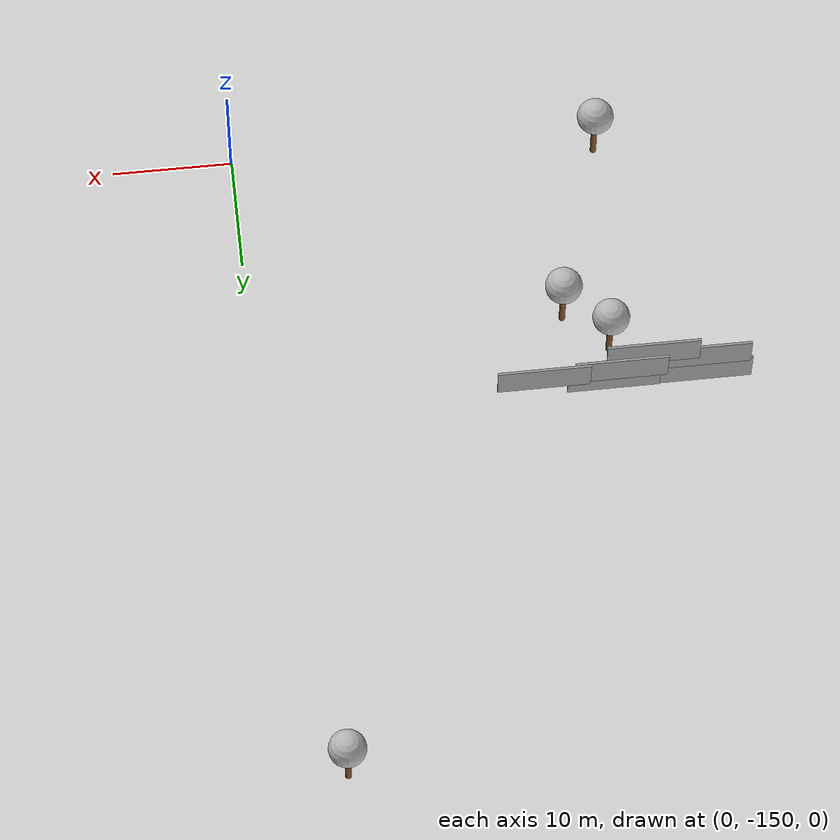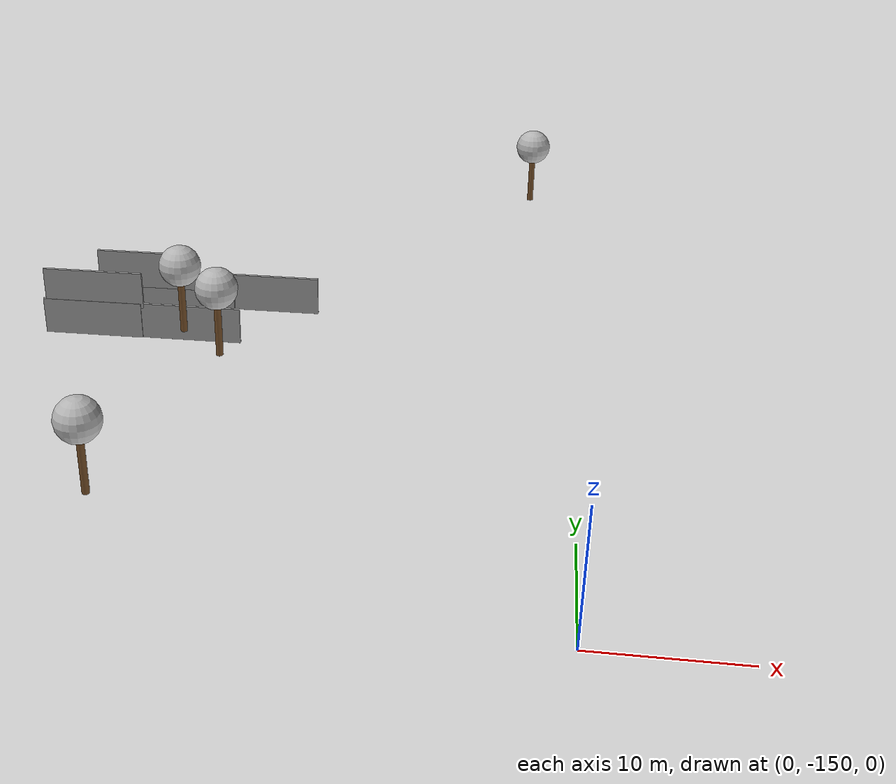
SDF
<sdf version="1.7">
 <world name="default">
  <model name="tree_simple_clone_clone_clone_1">
   <static>1</static>
   <link name="link">
    <pose>0 0 0.1 0 -0 0</pose>
    <inertial>
     <mass>666</mass>
     <inertia>
      <ixx>0.0861167</ixx>
      <ixy>0</ixy>
      <ixz>0</ixz>
      <iyy>0.0861167</iyy>
      <iyz>0</iyz>
      <izz>0.0861167</izz>
     </inertia>
    </inertial>
    <collision name="collision_trunk">
     <pose>0 0 2 0 -0 0</pose>
     <geometry><cylinder><radius>0.25</radius><length>4</length></cylinder></geometry>
     <surface>
      <contact>
       <poissons_ratio>0.347</poissons_ratio>
       <elastic_modulus>8.8e+09</elastic_modulus>
       <ode><kp>100000</kp><kd>100</kd><max_vel>100</max_vel><min_depth>0.001</min_depth></ode>
      </contact>
      <friction>
       <torsional>
        <coefficient>1</coefficient>
        <use_patch_radius>0</use_patch_radius>
        <surface_radius>0.01</surface_radius>
       </torsional>
      </friction>
     </surface>
    </collision>
    <collision name="collision_treetop">
     <pose>0 0 5.2 0 -0 0</pose>
     <geometry><sphere><radius>1.5</radius></sphere></geometry>
     <surface>
      <contact>
       <poissons_ratio>0.347</poissons_ratio>
       <elastic_modulus>8.8e+09</elastic_modulus>
       <ode><kp>100000</kp><kd>100</kd><max_vel>100</max_vel><min_depth>0.001</min_depth></ode>
      </contact>
      <friction>
       <torsional>
        <coefficient>1</coefficient>
        <use_patch_radius>0</use_patch_radius>
        <surface_radius>0.01</surface_radius>
       </torsional>
      </friction>
     </surface>
    </collision>
    <visual name="trunk">
     <pose>0 0 2 0 -0 0</pose>
     <geometry><cylinder><radius>0.25</radius><length>4</length></cylinder></geometry>
     <material>
      <script>
       <uri>model://tree_simple/scripts</uri>
       <uri>model://tree_simple/materials/textures</uri>
       <name>TreeSimple/Trunk</name>
      </script>
     </material>
    </visual>
    <visual name="treetop">
     <pose>0 0 5.2 0 -0 0</pose>
     <geometry><sphere><radius>1.5</radius></sphere></geometry>
     <material>
      <script>
       <uri>model://tree_simple/scripts</uri>
       <uri>model://tree_simple/materials/textures</uri>
       <name>TreeSimple/Treetop</name>
      </script>
     </material>
    </visual>
   </link>
   <pose>-4.13426 -91.5385 3.4407 0 -0 0</pose>
  </model>
  <model name="grey_wall">
   <static>1</static>
   <link name="link">
    <pose>0 0 1.4 0 -0 0</pose>
    <collision name="collision"><geometry><box><size>7.5 0.2 2.8</size></box></geometry></collision>
    <visual name="visual">
     <cast_shadows>0</cast_shadows>
     <geometry><box><size>7.5 0.2 2.8</size></box></geometry>
     <material>
      <script>
       <uri>model://grey_wall/materials/scripts</uri>
       <uri>model://grey_wall/materials/textures</uri>
       <name>vrc/grey_wall</name>
      </script>
     </material>
    </visual>
   </link>
   <pose>-28.7982 -123.213 3.76333 0 -0 0</pose>
  </model>
  <model name="grey_wall_clone">
   <static>1</static>
   <link name="link">
    <pose>0 0 1.4 0 -0 0</pose>
    <collision name="collision"><geometry><box><size>7.5 0.2 2.8</size></box></geometry></collision>
    <visual name="visual">
     <cast_shadows>0</cast_shadows>
     <geometry><box><size>7.5 0.2 2.8</size></box></geometry>
     <material>
      <script>
       <uri>model://grey_wall/materials/scripts</uri>
       <uri>model://grey_wall/materials/textures</uri>
       <name>vrc/grey_wall</name>
      </script>
     </material>
    </visual>
   </link>
   <pose>-36.2889 -123.278 3.76333 0 -0 0</pose>
  </model>
  <model name="grey_wall_clone_0">
   <static>1</static>
   <link name="link">
    <pose>0 0 1.4 0 -0 0</pose>
    <collision name="collision"><geometry><box><size>7.5 0.2 2.8</size></box></geometry></collision>
    <visual name="visual">
     <cast_shadows>0</cast_shadows>
     <geometry><box><size>7.5 0.2 2.8</size></box></geometry>
     <material>
      <script>
       <uri>model://grey_wall/materials/scripts</uri>
       <uri>model://grey_wall/materials/textures</uri>
       <name>vrc/grey_wall</name>
      </script>
     </material>
    </visual>
   </link>
   <pose>-36.0705 -123.228 6.22335 0 -0 0</pose>
  </model>
  <model name="grey_wall_clone_0_clone">
   <static>1</static>
   <link name="link">
    <pose>0 0 1.4 0 -0 0</pose>
    <collision name="collision"><geometry><box><size>7.5 0.2 2.8</size></box></geometry></collision>
    <visual name="visual">
     <cast_shadows>0</cast_shadows>
     <geometry><box><size>7.5 0.2 2.8</size></box></geometry>
     <material>
      <script>
       <uri>model://grey_wall/materials/scripts</uri>
       <uri>model://grey_wall/materials/textures</uri>
       <name>vrc/grey_wall</name>
      </script>
     </material>
    </visual>
   </link>
   <pose>-29.2567 -122.676 6.22335 0 -0 0</pose>
  </model>
  <model name="grey_wall_clone_0_clone_0">
   <static>1</static>
   <link name="link">
    <pose>0 0 1.4 0 -0 0</pose>
    <collision name="collision"><geometry><box><size>7.5 0.2 2.8</size></box></geometry></collision>
    <visual name="visual">
     <cast_shadows>0</cast_shadows>
     <geometry><box><size>7.5 0.2 2.8</size></box></geometry>
     <material>
      <script>
       <uri>model://grey_wall/materials/scripts</uri>
       <uri>model://grey_wall/materials/textures</uri>
       <name>vrc/grey_wall</name>
      </script>
     </material>
    </visual>
   </link>
   <pose>-22.991 -122.458 6.22335 0 -0 0</pose>
  </model>
  <model name="grey_wall_clone_0_clone_clone">
   <static>1</static>
   <link name="link">
    <pose>0 0 1.4 0 -0 0</pose>
    <collision name="collision"><geometry><box><size>7.5 0.2 2.8</size></box></geometry></collision>
    <visual name="visual">
     <cast_shadows>0</cast_shadows>
     <geometry><box><size>7.5 0.2 2.8</size></box></geometry>
     <material>
      <script>
       <uri>model://grey_wall/materials/scripts</uri>
       <uri>model://grey_wall/materials/textures</uri>
       <name>vrc/grey_wall</name>
      </script>
     </material>
    </visual>
   </link>
   <pose>-31.8067 -122.991 7.86464 0 -0 0</pose>
  </model>
  <model name="tree_simple_0">
   <static>1</static>
   <link name="link">
    <pose>0 0 0.1 0 -0 0</pose>
    <inertial>
     <mass>666</mass>
     <inertia>
      <ixx>0.0861167</ixx>
      <ixy>0</ixy>
      <ixz>0</ixz>
      <iyy>0.0861167</iyy>
      <iyz>0</iyz>
      <izz>0.0861167</izz>
     </inertia>
    </inertial>
    <collision name="collision_trunk">
     <pose>0 0 2 0 -0 0</pose>
     <geometry><cylinder><radius>0.25</radius><length>4</length></cylinder></geometry>
     <surface>
      <contact>
       <poissons_ratio>0.347</poissons_ratio>
       <elastic_modulus>8.8e+09</elastic_modulus>
       <ode><kp>100000</kp><kd>100</kd><max_vel>100</max_vel><min_depth>0.001</min_depth></ode>
      </contact>
      <friction>
       <torsional>
        <coefficient>1</coefficient>
        <use_patch_radius>0</use_patch_radius>
        <surface_radius>0.01</surface_radius>
       </torsional>
      </friction>
     </surface>
    </collision>
    <collision name="collision_treetop">
     <pose>0 0 5.2 0 -0 0</pose>
     <geometry><sphere><radius>1.5</radius></sphere></geometry>
     <surface>
      <contact>
       <poissons_ratio>0.347</poissons_ratio>
       <elastic_modulus>8.8e+09</elastic_modulus>
       <ode><kp>100000</kp><kd>100</kd><max_vel>100</max_vel><min_depth>0.001</min_depth></ode>
      </contact>
      <friction>
       <torsional>
        <coefficient>1</coefficient>
        <use_patch_radius>0</use_patch_radius>
        <surface_radius>0.01</surface_radius>
       </torsional>
      </friction>
     </surface>
    </collision>
    <visual name="trunk">
     <pose>0 0 2 0 -0 0</pose>
     <geometry><cylinder><radius>0.25</radius><length>4</length></cylinder></geometry>
     <material>
      <script>
       <uri>model://tree_simple/scripts</uri>
       <uri>model://tree_simple/materials/textures</uri>
       <name>TreeSimple/Trunk</name>
      </script>
     </material>
    </visual>
    <visual name="treetop">
     <pose>0 0 5.2 0 -0 0</pose>
     <geometry><sphere><radius>1.5</radius></sphere></geometry>
     <material>
      <script>
       <uri>model://tree_simple/scripts</uri>
       <uri>model://tree_simple/materials/textures</uri>
       <name>TreeSimple/Treetop</name>
      </script>
     </material>
    </visual>
   </link>
   <pose>-29.9017 -145.155 4.71357 0 -0 0</pose>
  </model>
  <model name="tree_simple_0_clone_2_clone_clone_11_clone_3">
   <static>1</static>
   <link name="link">
    <pose>0 0 0.1 0 -0 0</pose>
    <inertial>
     <mass>666</mass>
     <inertia>
      <ixx>0.0861167</ixx>
      <ixy>0</ixy>
      <ixz>0</ixz>
      <iyy>0.0861167</iyy>
      <iyz>0</iyz>
      <izz>0.0861167</izz>
     </inertia>
    </inertial>
    <collision name="collision_trunk">
     <pose>0 0 2 0 -0 0</pose>
     <geometry><cylinder><radius>0.25</radius><length>4</length></cylinder></geometry>
     <surface>
      <contact>
       <poissons_ratio>0.347</poissons_ratio>
       <elastic_modulus>8.8e+09</elastic_modulus>
       <ode><kp>100000</kp><kd>100</kd><max_vel>100</max_vel><min_depth>0.001</min_depth></ode>
      </contact>
      <friction>
       <torsional>
        <coefficient>1</coefficient>
        <use_patch_radius>0</use_patch_radius>
        <surface_radius>0.01</surface_radius>
       </torsional>
      </friction>
     </surface>
    </collision>
    <collision name="collision_treetop">
     <pose>0 0 5.2 0 -0 0</pose>
     <geometry><sphere><radius>1.5</radius></sphere></geometry>
     <surface>
      <contact>
       <poissons_ratio>0.347</poissons_ratio>
       <elastic_modulus>8.8e+09</elastic_modulus>
       <ode><kp>100000</kp><kd>100</kd><max_vel>100</max_vel><min_depth>0.001</min_depth></ode>
      </contact>
      <friction>
       <torsional>
        <coefficient>1</coefficient>
        <use_patch_radius>0</use_patch_radius>
        <surface_radius>0.01</surface_radius>
       </torsional>
      </friction>
     </surface>
    </collision>
    <visual name="trunk">
     <pose>0 0 2 0 -0 0</pose>
     <geometry><cylinder><radius>0.25</radius><length>4</length></cylinder></geometry>
     <material>
      <script>
       <uri>model://tree_simple/scripts</uri>
       <uri>model://tree_simple/materials/textures</uri>
       <name>TreeSimple/Trunk</name>
      </script>
     </material>
    </visual>
    <visual name="treetop">
     <pose>0 0 5.2 0 -0 0</pose>
     <geometry><sphere><radius>1.5</radius></sphere></geometry>
     <material>
      <script>
       <uri>model://tree_simple/scripts</uri>
       <uri>model://tree_simple/materials/textures</uri>
       <name>TreeSimple/Treetop</name>
      </script>
     </material>
    </visual>
   </link>
   <pose>-25.2506 -128.869 5.69982 0 -0 0</pose>
  </model>
  <model name="tree_simple_0_clone_2_clone_clone_11_clone_4">
   <static>1</static>
   <link name="link">
    <pose>0 0 0.1 0 -0 0</pose>
    <inertial>
     <mass>666</mass>
     <inertia>
      <ixx>0.0861167</ixx>
      <ixy>0</ixy>
      <ixz>0</ixz>
      <iyy>0.0861167</iyy>
      <iyz>0</iyz>
      <izz>0.0861167</izz>
     </inertia>
    </inertial>
    <collision name="collision_trunk">
     <pose>0 0 2 0 -0 0</pose>
     <geometry><cylinder><radius>0.25</radius><length>4</length></cylinder></geometry>
     <surface>
      <contact>
       <poissons_ratio>0.347</poissons_ratio>
       <elastic_modulus>8.8e+09</elastic_modulus>
       <ode><kp>100000</kp><kd>100</kd><max_vel>100</max_vel><min_depth>0.001</min_depth></ode>
      </contact>
      <friction>
       <torsional>
        <coefficient>1</coefficient>
        <use_patch_radius>0</use_patch_radius>
        <surface_radius>0.01</surface_radius>
       </torsional>
      </friction>
     </surface>
    </collision>
    <collision name="collision_treetop">
     <pose>0 0 5.2 0 -0 0</pose>
     <geometry><sphere><radius>1.5</radius></sphere></geometry>
     <surface>
      <contact>
       <poissons_ratio>0.347</poissons_ratio>
       <elastic_modulus>8.8e+09</elastic_modulus>
       <ode><kp>100000</kp><kd>100</kd><max_vel>100</max_vel><min_depth>0.001</min_depth></ode>
      </contact>
      <friction>
       <torsional>
        <coefficient>1</coefficient>
        <use_patch_radius>0</use_patch_radius>
        <surface_radius>0.01</surface_radius>
       </torsional>
      </friction>
     </surface>
    </collision>
    <visual name="trunk">
     <pose>0 0 2 0 -0 0</pose>
     <geometry><cylinder><radius>0.25</radius><length>4</length></cylinder></geometry>
     <material>
      <script>
       <uri>model://tree_simple/scripts</uri>
       <uri>model://tree_simple/materials/textures</uri>
       <name>TreeSimple/Trunk</name>
      </script>
     </material>
    </visual>
    <visual name="treetop">
     <pose>0 0 5.2 0 -0 0</pose>
     <geometry><sphere><radius>1.5</radius></sphere></geometry>
     <material>
      <script>
       <uri>model://tree_simple/scripts</uri>
       <uri>model://tree_simple/materials/textures</uri>
       <name>TreeSimple/Treetop</name>
      </script>
     </material>
    </visual>
   </link>
   <pose>-28.6478 -125.616 5.69982 0 -0 0</pose>
  </model>
 </world>
</sdf>
